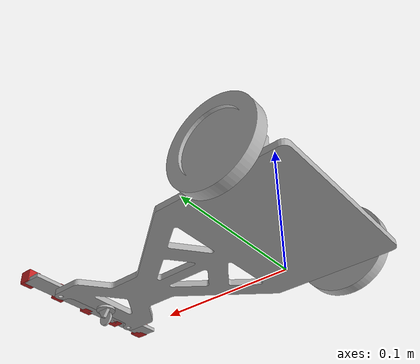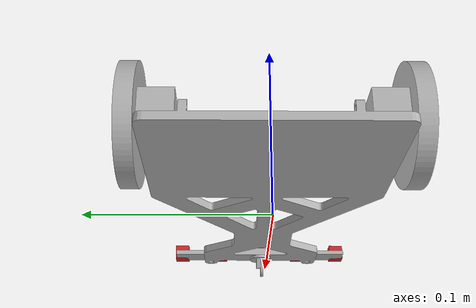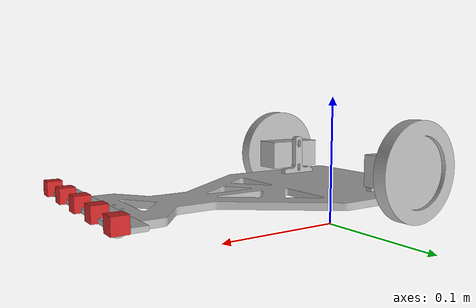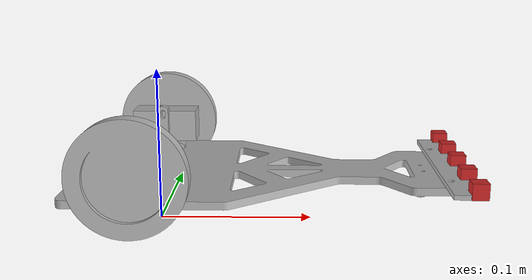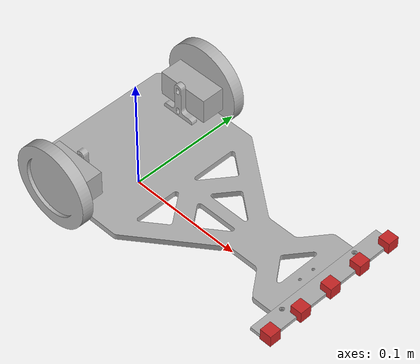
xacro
<?xml version="1.0" ?>
<robot name="simple" xmlns:xacro="http://www.ros.org/wiki/xacro">

<xacro:include filename="$(find simple_description)/urdf/materials.xacro" />
<xacro:include filename="$(find simple_description)/urdf/simple.trans" />
<xacro:include filename="$(find simple_description)/urdf/simple.gazebo" />
<xacro:include filename="$(find simple_description)/urdf/sensor.xacro" />
<link name="base_link">
  <inertial>
    <origin xyz="0.03919375584100265 6.514194882791157e-07 0.032819727449941855" rpy="0 0 0"/>
    <mass value="0.8698237070518965"/>
    <inertia ixx="0.00118" iyy="0.003549" izz="0.004715" ixy="-0.0" iyz="0.0" ixz="1.2e-05"/>
  </inertial>
  <visual>
    <origin xyz="0 0 0" rpy="0 0 0"/>
    <geometry>
      <mesh filename="package://simple_description/meshes/base_link.dae" scale="0.001 0.001 0.001"/>
    </geometry>
    <material name="silver"/>
  </visual>
  <collision>
    <origin xyz="0 0 0" rpy="0 0 0"/>
    <geometry>
      <mesh filename="package://simple_description/meshes/base_link.stl" scale="0.001 0.001 0.001"/>
    </geometry>
  </collision>
</link>

<link name="shaft1_1">
  <inertial>
    <origin xyz="-1.6844164951734797e-15 -0.009999999999993042 0.0" rpy="0 0 0"/>
    <mass value="0.15542999999999998"/>
    <inertia ixx="1.1e-05" iyy="3.2e-05" izz="3.1e-05" ixy="-0.0" iyz="0.0" ixz="0.0"/>
  </inertial>
  <visual>
    <origin xyz="0.005 0.0515 -0.05045" rpy="0 0 0"/>
    <geometry>
      <mesh filename="package://simple_description/meshes/shaft1_1.dae" scale="0.001 0.001 0.001"/>
    </geometry>
    <material name="silver"/>
  </visual>
  <collision>
    <origin xyz="0.005 0.0515 -0.05045" rpy="0 0 0"/>
    <geometry>
      <mesh filename="package://simple_description/meshes/shaft1_1.stl" scale="0.001 0.001 0.001"/>
    </geometry>
  </collision>
</link>

<link name="whell1_1">
  <inertial>
    <origin xyz="-1.6922227508153753e-15 -0.004367469894646314 1.3877787807814457e-17" rpy="0 0 0"/>
    <mass value="0.25586308761788984"/>
    <inertia ixx="8.7e-05" iyy="0.000171" izz="8.7e-05" ixy="0.0" iyz="-0.0" ixz="0.0"/>
  </inertial>
  <visual>
    <origin xyz="0.005 0.0715 -0.05045" rpy="0 0 0"/>
    <geometry>
      <mesh filename="package://simple_description/meshes/whell1_1.dae" scale="0.001 0.001 0.001"/>
    </geometry>
    <material name="silver"/>
  </visual>
  <collision>
    <origin xyz="0.005 0.0715 -0.05045" rpy="0 0 0"/>
    <geometry>
      <mesh filename="package://simple_description/meshes/whell1_1.stl" scale="0.001 0.001 0.001"/>
    </geometry>
  </collision>
</link>

<link name="shaft2_1">
  <inertial>
    <origin xyz="-1.6662018986757232e-15 0.010000000000007038 0.0" rpy="0 0 0"/>
    <mass value="0.15542999999999998"/>
    <inertia ixx="1.1e-05" iyy="3.2e-05" izz="3.1e-05" ixy="0.0" iyz="0.0" ixz="0.0"/>
  </inertial>
  <visual>
    <origin xyz="0.005 -0.0515 -0.05045" rpy="0 0 0"/>
    <geometry>
      <mesh filename="package://simple_description/meshes/shaft2_1.dae" scale="0.001 0.001 0.001"/>
    </geometry>
    <material name="silver"/>
  </visual>
  <collision>
    <origin xyz="0.005 -0.0515 -0.05045" rpy="0 0 0"/>
    <geometry>
      <mesh filename="package://simple_description/meshes/shaft2_1.stl" scale="0.001 0.001 0.001"/>
    </geometry>
  </collision>
</link>

<link name="whell2_1">
  <inertial>
    <origin xyz="-1.6740081543176188e-15 0.004367469894660317 -1.3877787807814457e-17" rpy="0 0 0"/>
    <mass value="0.25586308761788984"/>
    <inertia ixx="8.7e-05" iyy="0.000171" izz="8.7e-05" ixy="-0.0" iyz="0.0" ixz="-0.0"/>
  </inertial>
  <visual>
    <origin xyz="0.005 -0.0715 -0.05045" rpy="0 0 0"/>
    <geometry>
      <mesh filename="package://simple_description/meshes/whell2_1.dae" scale="0.001 0.001 0.001"/>
    </geometry>
    <material name="silver"/>
  </visual>
  <collision>
    <origin xyz="0.005 -0.0715 -0.05045" rpy="0 0 0"/>
    <geometry>
      <mesh filename="package://simple_description/meshes/whell2_1.stl" scale="0.001 0.001 0.001"/>
    </geometry>
  </collision>
</link>

<link name="sensor_1">
  <inertial>
    <origin xyz="0.004049697262418467 0.03697462579723577 0.0015000000000000013" rpy="0 0 0"/>
    <mass value="0.047638523944063704"/>
    <inertia ixx="6.5e-05" iyy="1e-06" izz="6.6e-05" ixy="-0.0" iyz="-0.0" ixz="0.0"/>
  </inertial>
  <visual>
    <origin xyz="-0.184 0.037 -0.035" rpy="0 0 0"/>
    <geometry>
      <mesh filename="package://simple_description/meshes/sensor_1.dae" scale="0.001 0.001 0.001"/>
    </geometry>
    <material name="silver"/>
  </visual>
  <collision>
    <origin xyz="-0.184 0.037 -0.035" rpy="0 0 0"/>
    <geometry>
      <mesh filename="package://simple_description/meshes/sensor_1.stl" scale="0.001 0.001 0.001"/>
    </geometry>
  </collision>
</link>

<link name="roda2_1">
  <inertial>
    <origin xyz="6.387668172180838e-13 -0.0009999999999930256 0.0" rpy="0 0 0"/>
    <mass value="0.0017756281678090364"/>
    <inertia ixx="0.0" iyy="0.0" izz="0.0" ixy="0.0" iyz="0.0" ixz="-0.0"/>
  </inertial>
  <visual>
    <origin xyz="-0.1725 -0.0 -0.0215" rpy="0 0 0"/>
    <geometry>
      <mesh filename="package://simple_description/meshes/roda2_1.dae" scale="0.001 0.001 0.001"/>
    </geometry>
    <material name="silver"/>
  </visual>
  <collision>
    <origin xyz="-0.1725 -0.0 -0.0215" rpy="0 0 0"/>
    <geometry>
      <mesh filename="package://simple_description/meshes/roda2_1.stl" scale="0.001 0.001 0.001"/>
    </geometry>
  </collision>
</link>

<link name="roda1_1">
  <inertial>
    <origin xyz="1.1379786002407855e-14 0.00713725588241533 -0.0019083196916651335" rpy="0 0 0"/>
    <mass value="0.0037399690122014873"/>
    <inertia ixx="0.0" iyy="0.0" izz="0.0" ixy="0.0" iyz="0.0" ixz="-0.0"/>
  </inertial>
  <visual>
    <origin xyz="-0.1725 0.00675 -0.03" rpy="0 0 0"/>
    <geometry>
      <mesh filename="package://simple_description/meshes/roda1_1.dae" scale="0.001 0.001 0.001"/>
    </geometry>
    <material name="silver"/>
  </visual>
  <collision>
    <origin xyz="-0.1725 0.00675 -0.03" rpy="0 0 0"/>
    <geometry>
      <mesh filename="package://simple_description/meshes/roda1_1.stl" scale="0.001 0.001 0.001"/>
    </geometry>
  </collision>
</link>

<joint name="Rigid1" type="fixed">
  <origin xyz="-0.005 -0.0515 0.05045" rpy="0 0 0"/>
  <parent link="base_link"/>
  <child link="shaft1_1"/>
</joint>

<joint name="Rev2" type="continuous">
  <origin xyz="0.0 -0.02 0.0" rpy="0 0 0"/>
  <parent link="shaft1_1"/>
  <child link="whell1_1"/>
  <axis xyz="-0.0 1.0 0.0"/>
</joint>

<joint name="Rigid3" type="fixed">
  <origin xyz="-0.005 0.0515 0.05045" rpy="0 0 0"/>
  <parent link="base_link"/>
  <child link="shaft2_1"/>
</joint>

<joint name="Rev4" type="continuous">
  <origin xyz="0.0 0.02 0.0" rpy="0 0 0"/>
  <parent link="shaft2_1"/>
  <child link="whell2_1"/>
  <axis xyz="-0.0 1.0 0.0"/>
</joint>

<joint name="Rigid5" type="fixed">
  <origin xyz="0.184 -0.037 0.035" rpy="0 0 0"/>
  <parent link="base_link"/>
  <child link="sensor_1"/>
</joint>

<joint name="Rev7" type="continuous">
  <origin xyz="0.0 0.00675 -0.0085" rpy="0 0 0"/>
  <parent link="roda1_1"/>
  <child link="roda2_1"/>
  <axis xyz="0.0 -1.0 0.0"/>
</joint>

<joint name="Rev8" type="continuous">
  <origin xyz="0.1725 -0.00675 0.03" rpy="0 0 0"/>
  <parent link="base_link"/>
  <child link="roda1_1"/>
  <axis xyz="0.0 0.0 1.0"/>
</joint>

<gazebo>
  <plugin filename="libgazebo_ros_diff_drive.so" name="differential_drive_controller">
    <rosDebugLevel>na</rosDebugLevel>
    <legacyMode>false</legacyMode>
    <alwaysOn>true</alwaysOn>
    <updateRate>20</updateRate>
    <leftJoint>Rev4</leftJoint>
    <publishWheelTF>false</publishWheelTF>
    <rightJoint>Rev2</rightJoint>
    <wheelSeparation>0.3</wheelSeparation>
    <publishWheelJointState>false</publishWheelJointState>
    <wheelDiameter>0.2</wheelDiameter>
    <wheelAcceleration>0</wheelAcceleration>
    <wheelTorque>5</wheelTorque>
    <odometrySource>1</odometrySource>
    <torque>0.1</torque>
    <commandTopic>cmd_vel</commandTopic>
    <odometryTopic>odom</odometryTopic>
    <publishOdomTF>true</publishOdomTF>
    <publishTf>1</publishTf>
    <odometryFrame>odom</odometryFrame>
    <robotBaseFrame>base_link</robotBaseFrame>
  </plugin>
</gazebo>

<!-- Sensor LF -->
<xacro:sensor x="0.195" y="0.03" z="0.04" parent="base_link"/>

</robot>

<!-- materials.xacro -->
<robot name="simple" xmlns:xacro="http://www.ros.org/wiki/xacro" >

<material name="silver">
  <color rgba="0.700 0.700 0.700 1.000"/>
</material>

</robot>

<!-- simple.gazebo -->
<robot name="simple" xmlns:xacro="http://www.ros.org/wiki/xacro" >

<xacro:property name="body_color" value="Gazebo/Silver" />

<gazebo>
  <plugin name="control" filename="libgazebo_ros_control.so"/>
</gazebo>
<gazebo reference="base_link">
  <material>${body_color}</material>
  <mu1>0.2</mu1>
  <mu2>0.2</mu2>
  <selfCollide>true</selfCollide>
  <gravity>true</gravity>
</gazebo>

<gazebo reference="shaft1_1">
  <material>${body_color}</material>
  <mu1>0.2</mu1>
  <mu2>0.2</mu2>
  <selfCollide>true</selfCollide>
</gazebo>

<gazebo reference="whell1_1">
  <material>${body_color}</material>
  <mu1>0.2</mu1>
  <mu2>0.2</mu2>
  <selfCollide>true</selfCollide>
</gazebo>

<gazebo reference="shaft2_1">
  <material>${body_color}</material>
  <mu1>0.2</mu1>
  <mu2>0.2</mu2>
  <selfCollide>true</selfCollide>
</gazebo>

<gazebo reference="whell2_1">
  <material>${body_color}</material>
  <mu1>0.2</mu1>
  <mu2>0.2</mu2>
  <selfCollide>true</selfCollide>
</gazebo>

<gazebo reference="sensor_1">
  <material>${body_color}</material>
  <mu1>0.2</mu1>
  <mu2>0.2</mu2>
  <selfCollide>true</selfCollide>
</gazebo>

<gazebo reference="roda2_1">
  <material>${body_color}</material>
  <mu1>0.2</mu1>
  <mu2>0.2</mu2>
  <selfCollide>true</selfCollide>
</gazebo>

<gazebo reference="roda1_1">
  <material>${body_color}</material>
  <mu1>0.2</mu1>
  <mu2>0.2</mu2>
  <selfCollide>true</selfCollide>
</gazebo>

</robot>

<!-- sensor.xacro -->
<robot xmlns:xacro="http://www.ros.org/wiki/xacro">
  <xacro:macro name="sensor" params="x y z parent">
  <!-- Joint -->
  <joint name="sensor_joint_center" type="fixed">
    <axis xyz="0 1 0" />
    <origin xyz="${x} 0 ${z}" rpy="0 1.57079632679 0" />
    <parent link="${parent}" />
    <child link="sensor_link_center" />
  </joint>

  <!-- Link -->
  <link name="sensor_link_center">
    <collision>
      <origin xyz="0 0 0" rpy="0 0 0"/>
      <geometry>
        <box size="0.01 0.01 0.01"/>
      </geometry>
    </collision>
    <visual>
      <origin xyz="0 0 0" rpy="0 0 0"/>
      <geometry>
        <box size="0.01 0.01 0.01"/>
      </geometry>
      <material name="red"/>
    </visual>
    <inertial>
      <mass value="1e-5" />
      <origin xyz="0 0 0" rpy="0 0 0"/>
      <inertia ixx="1e-6" ixy="0" ixz="0" iyy="1e-6" iyz="0" izz="1e-6" />
    </inertial>
  </link>

  <gazebo reference="sensor_link_center">
    <material>Gazebo/Red</material>
    <sensor type="camera" name="camera_center">
      <update_rate>30.0</update_rate>
      <camera name="head">
        <horizontal_fov>0.8</horizontal_fov>
        <image>
          <width>20</width>
          <height>20</height>
          <format>R8G8B8</format>
        </image>
        <clip>
          <near>0.02</near>
          <far>100</far>
        </clip>
        <noise>
          <type>gaussian</type>
          <mean>0.0</mean>
          <stddev>0.007</stddev>
        </noise>
      </camera>
      <plugin name="camera_controller" filename="libgazebo_ros_camera.so">
        <alwaysOn>true</alwaysOn>
        <updateRate>0.0</updateRate>
        <cameraName>sensor/camera_center</cameraName>
        <imageTopicName>image_raw</imageTopicName>
        <cameraInfoTopicName>camera_info</cameraInfoTopicName>
        <frameName>sensor_link_center</frameName>
        <hackBaseline>0.07</hackBaseline>
        <distortionK1>0.0</distortionK1>
        <distortionK2>0.0</distortionK2>
        <distortionK3>0.0</distortionK3>
        <distortionT1>0.0</distortionT1>
        <distortionT2>0.0</distortionT2>
      </plugin>
    </sensor>
  </gazebo>

  <!-- Joint -->
  <joint name="sensor_joint_left" type="fixed">
    <axis xyz="0 1 0" />
    <origin xyz="${x} ${y} ${z}" rpy="0 1.57079632679 0" />
    <parent link="${parent}" />
    <child link="sensor_link_left" />
  </joint>

  <!-- Link -->
  <link name="sensor_link_left">
    <collision>
      <origin xyz="0 0 0" rpy="0 0 0"/>
      <geometry>
        <box size="0.01 0.01 0.01"/>
      </geometry>
    </collision>
    <visual>
      <origin xyz="0 0 0" rpy="0 0 0"/>
      <geometry>
        <box size="0.01 0.01 0.01"/>
      </geometry>
      <material name="red"/>
    </visual>
    <inertial>
      <mass value="1e-5" />
      <origin xyz="0 0 0" rpy="0 0 0"/>
      <inertia ixx="1e-6" ixy="0" ixz="0" iyy="1e-6" iyz="0" izz="1e-6" />
    </inertial>
  </link>

  <gazebo reference="sensor_link_left">
    <material>Gazebo/Red</material>
    <sensor type="camera" name="camera_left">
      <update_rate>30.0</update_rate>
      <camera name="head">
        <horizontal_fov>0.8</horizontal_fov>
        <image>
          <width>20</width>
          <height>20</height>
          <format>R8G8B8</format>
        </image>
        <clip>
          <near>0.02</near>
          <far>100</far>
        </clip>
        <noise>
          <type>gaussian</type>
          <mean>0.0</mean>
          <stddev>0.007</stddev>
        </noise>
      </camera>
      <plugin name="camera_controller" filename="libgazebo_ros_camera.so">
        <alwaysOn>true</alwaysOn>
        <updateRate>0.0</updateRate>
        <cameraName>sensor/camera_left</cameraName>
        <imageTopicName>image_raw</imageTopicName>
        <cameraInfoTopicName>camera_info</cameraInfoTopicName>
        <frameName>sensor_link_left</frameName>
        <hackBaseline>0.07</hackBaseline>
        <distortionK1>0.0</distortionK1>
        <distortionK2>0.0</distortionK2>
        <distortionK3>0.0</distortionK3>
        <distortionT1>0.0</distortionT1>
        <distortionT2>0.0</distortionT2>
      </plugin>
    </sensor>
  </gazebo>

  <!-- Joint -->
  <joint name="sensor_joint_right" type="fixed">
    <axis xyz="0 1 0" />
    <origin xyz="${x} -${y} ${z}" rpy="0 1.57079632679 0" />
    <parent link="${parent}" />
    <child link="sensor_link_right" />
  </joint>

  <!-- Link -->
  <link name="sensor_link_right">
    <collision>
      <origin xyz="0 0 0" rpy="0 0 0"/>
      <geometry>
        <box size="0.01 0.01 0.01"/>
      </geometry>
    </collision>
    <visual>
      <origin xyz="0 0 0" rpy="0 0 0"/>
      <geometry>
        <box size="0.01 0.01 0.01"/>
      </geometry>
      <material name="red"/>
    </visual>
    <inertial>
      <mass value="1e-5" />
      <origin xyz="0 0 0" rpy="0 0 0"/>
      <inertia ixx="1e-6" ixy="0" ixz="0" iyy="1e-6" iyz="0" izz="1e-6" />
    </inertial>
  </link>

  <gazebo reference="sensor_link_right">
    <material>Gazebo/Red</material>
    <sensor type="camera" name="camera_right">
      <update_rate>30.0</update_rate>
      <camera name="head">
        <horizontal_fov>0.8</horizontal_fov>
        <image>
          <width>20</width>
          <height>20</height>
          <format>R8G8B8</format>
        </image>
        <clip>
          <near>0.02</near>
          <far>100</far>
        </clip>
        <noise>
          <type>gaussian</type>
          <mean>0.0</mean>
          <stddev>0.007</stddev>
        </noise>
      </camera>
      <plugin name="camera_controller" filename="libgazebo_ros_camera.so">
        <alwaysOn>true</alwaysOn>
        <updateRate>0.0</updateRate>
        <cameraName>sensor/camera_right</cameraName>
        <imageTopicName>image_raw</imageTopicName>
        <cameraInfoTopicName>camera_info</cameraInfoTopicName>
        <frameName>sensor_link_right</frameName>
        <hackBaseline>0.07</hackBaseline>
        <distortionK1>0.0</distortionK1>
        <distortionK2>0.0</distortionK2>
        <distortionK3>0.0</distortionK3>
        <distortionT1>0.0</distortionT1>
        <distortionT2>0.0</distortionT2>
      </plugin>
    </sensor>
  </gazebo>

  <!-- Joint -->
  <joint name="sensor_joint_full_left" type="fixed">
    <axis xyz="0 1 0" />
    <origin xyz="${x} ${2*y} ${z}" rpy="0 1.57079632679 0" />
    <parent link="${parent}" />
    <child link="sensor_link_full_left" />
  </joint>

  <!-- Link -->
  <link name="sensor_link_full_left">
    <collision>
      <origin xyz="0 0 0" rpy="0 0 0"/>
      <geometry>
        <box size="0.01 0.01 0.01"/>
      </geometry>
    </collision>
    <visual>
      <origin xyz="0 0 0" rpy="0 0 0"/>
      <geometry>
        <box size="0.01 0.01 0.01"/>
      </geometry>
      <material name="red"/>
    </visual>
    <inertial>
      <mass value="1e-5" />
      <origin xyz="0 0 0" rpy="0 0 0"/>
      <inertia ixx="1e-6" ixy="0" ixz="0" iyy="1e-6" iyz="0" izz="1e-6" />
    </inertial>
  </link>

  <gazebo reference="sensor_link_full_left">
    <material>Gazebo/Red</material>
    <sensor type="camera" name="camera_full_left">
      <update_rate>30.0</update_rate>
      <camera name="head">
        <horizontal_fov>0.8</horizontal_fov>
        <image>
          <width>20</width>
          <height>20</height>
          <format>R8G8B8</format>
        </image>
        <clip>
          <near>0.02</near>
          <far>100</far>
        </clip>
        <noise>
          <type>gaussian</type>
          <mean>0.0</mean>
          <stddev>0.007</stddev>
        </noise>
      </camera>
      <plugin name="camera_controller" filename="libgazebo_ros_camera.so">
        <alwaysOn>true</alwaysOn>
        <updateRate>0.0</updateRate>
        <cameraName>sensor/camera_full_left</cameraName>
        <imageTopicName>image_raw</imageTopicName>
        <cameraInfoTopicName>camera_info</cameraInfoTopicName>
        <frameName>sensor_link_full_left</frameName>
        <hackBaseline>0.07</hackBaseline>
        <distortionK1>0.0</distortionK1>
        <distortionK2>0.0</distortionK2>
        <distortionK3>0.0</distortionK3>
        <distortionT1>0.0</distortionT1>
        <distortionT2>0.0</distortionT2>
      </plugin>
    </sensor>
  </gazebo>

  <!-- Joint -->
  <joint name="sensor_joint_full_right" type="fixed">
    <axis xyz="0 1 0" />
    <origin xyz="${x} ${-2*y} ${z}" rpy="0 1.57079632679 0" />
    <parent link="${parent}" />
    <child link="sensor_link_full_right" />
  </joint>

  <!-- Link -->
  <link name="sensor_link_full_right">
    <collision>
      <origin xyz="0 0 0" rpy="0 0 0"/>
      <geometry>
        <box size="0.01 0.01 0.01"/>
      </geometry>
    </collision>
    <visual>
      <origin xyz="0 0 0" rpy="0 0 0"/>
      <geometry>
        <box size="0.01 0.01 0.01"/>
      </geometry>
      <material name="red"/>
    </visual>
    <inertial>
      <mass value="1e-5" />
      <origin xyz="0 0 0" rpy="0 0 0"/>
      <inertia ixx="1e-6" ixy="0" ixz="0" iyy="1e-6" iyz="0" izz="1e-6" />
    </inertial>
  </link>

  <gazebo reference="sensor_link_full_right">
    <material>Gazebo/Red</material>
    <sensor type="camera" name="camera_full_right">
      <update_rate>30.0</update_rate>
      <camera name="head">
        <horizontal_fov>0.8</horizontal_fov>
        <image>
          <width>20</width>
          <height>20</height>
          <format>R8G8B8</format>
        </image>
        <clip>
          <near>0.02</near>
          <far>100</far>
        </clip>
        <noise>
          <type>gaussian</type>
          <mean>0.0</mean>
          <stddev>0.007</stddev>
        </noise>
      </camera>
      <plugin name="camera_controller" filename="libgazebo_ros_camera.so">
        <alwaysOn>true</alwaysOn>
        <updateRate>0.0</updateRate>
        <cameraName>sensor/camera_full_right</cameraName>
        <imageTopicName>image_raw</imageTopicName>
        <cameraInfoTopicName>camera_info</cameraInfoTopicName>
        <frameName>sensor_link_full_right</frameName>
        <hackBaseline>0.07</hackBaseline>
        <distortionK1>0.0</distortionK1>
        <distortionK2>0.0</distortionK2>
        <distortionK3>0.0</distortionK3>
        <distortionT1>0.0</distortionT1>
        <distortionT2>0.0</distortionT2>
      </plugin>
    </sensor>
  </gazebo>
  </xacro:macro>

</robot>
